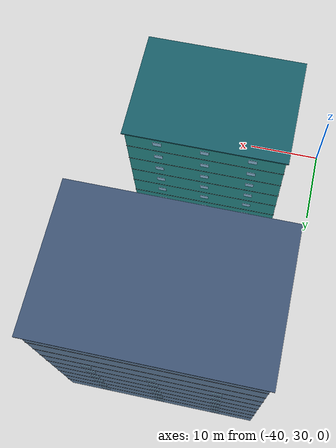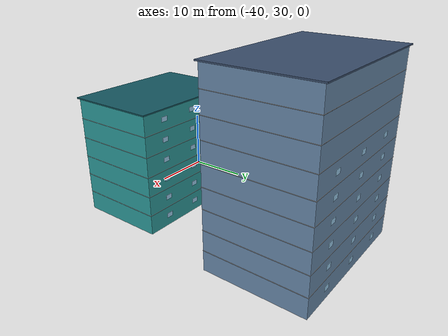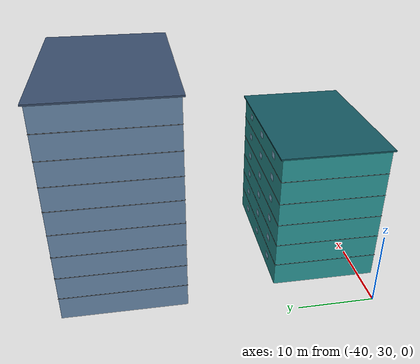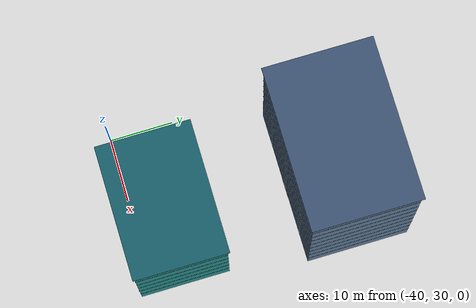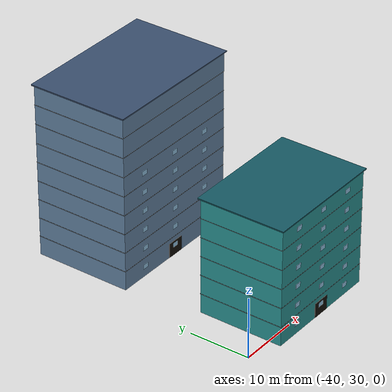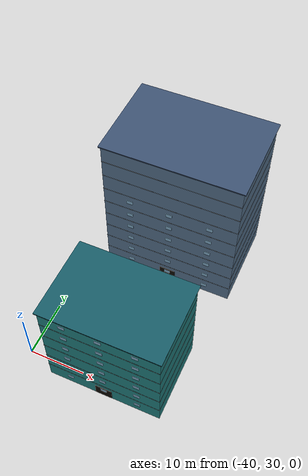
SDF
<sdf version="1.7">
 <world name="campus_regional">
  <model name="laboratory_building">
   <static>true</static>
   <pose>-25.0 62.0 0 0 0 0</pose>
   <link name="body">
    <visual name="body">
     <pose>0 0 14.400 0 0 0</pose>
     <geometry><box><size>24.000 16.000 28.800</size></box></geometry>
     <material><ambient>0.420 0.550 0.680 1.000</ambient><diffuse>0.420 0.550 0.680 1.000</diffuse></material>
    </visual>
    <collision name="body_collision">
     <pose>0 0 14.400 0 0 0</pose>
     <geometry><box><size>24.000 16.000 28.800</size></box></geometry>
    </collision>
    <visual name="roof">
     <pose>0 0 28.900 0 0 0</pose>
     <geometry><box><size>24.600 16.600 0.200</size></box></geometry>
     <material><ambient>0.220 0.300 0.420 1.000</ambient><diffuse>0.220 0.300 0.420 1.000</diffuse></material>
    </visual>
    <visual name="floor_sep_n_1">
     <pose>0 8.018 3.200 0 0 0</pose>
     <geometry><box><size>24.100 0.035 0.060</size></box></geometry>
     <material><ambient>0.080 0.080 0.080 1.000</ambient><diffuse>0.080 0.080 0.080 1.000</diffuse></material>
    </visual>
    <visual name="floor_sep_s_1">
     <pose>0 -8.018 3.200 0 0 0</pose>
     <geometry><box><size>24.100 0.035 0.060</size></box></geometry>
     <material><ambient>0.080 0.080 0.080 1.000</ambient><diffuse>0.080 0.080 0.080 1.000</diffuse></material>
    </visual>
    <visual name="floor_sep_e_1">
     <pose>12.018 0 3.200 0 0 0</pose>
     <geometry><box><size>0.035 16.100 0.060</size></box></geometry>
     <material><ambient>0.080 0.080 0.080 1.000</ambient><diffuse>0.080 0.080 0.080 1.000</diffuse></material>
    </visual>
    <visual name="floor_sep_w_1">
     <pose>-12.018 0 3.200 0 0 0</pose>
     <geometry><box><size>0.035 16.100 0.060</size></box></geometry>
     <material><ambient>0.080 0.080 0.080 1.000</ambient><diffuse>0.080 0.080 0.080 1.000</diffuse></material>
    </visual>
    <visual name="floor_sep_n_2">
     <pose>0 8.018 6.400 0 0 0</pose>
     <geometry><box><size>24.100 0.035 0.060</size></box></geometry>
     <material><ambient>0.080 0.080 0.080 1.000</ambient><diffuse>0.080 0.080 0.080 1.000</diffuse></material>
    </visual>
    <visual name="floor_sep_s_2">
     <pose>0 -8.018 6.400 0 0 0</pose>
     <geometry><box><size>24.100 0.035 0.060</size></box></geometry>
     <material><ambient>0.080 0.080 0.080 1.000</ambient><diffuse>0.080 0.080 0.080 1.000</diffuse></material>
    </visual>
    <visual name="floor_sep_e_2">
     <pose>12.018 0 6.400 0 0 0</pose>
     <geometry><box><size>0.035 16.100 0.060</size></box></geometry>
     <material><ambient>0.080 0.080 0.080 1.000</ambient><diffuse>0.080 0.080 0.080 1.000</diffuse></material>
    </visual>
    <visual name="floor_sep_w_2">
     <pose>-12.018 0 6.400 0 0 0</pose>
     <geometry><box><size>0.035 16.100 0.060</size></box></geometry>
     <material><ambient>0.080 0.080 0.080 1.000</ambient><diffuse>0.080 0.080 0.080 1.000</diffuse></material>
    </visual>
    <visual name="floor_sep_n_3">
     <pose>0 8.018 9.600 0 0 0</pose>
     <geometry><box><size>24.100 0.035 0.060</size></box></geometry>
     <material><ambient>0.080 0.080 0.080 1.000</ambient><diffuse>0.080 0.080 0.080 1.000</diffuse></material>
    </visual>
    <visual name="floor_sep_s_3">
     <pose>0 -8.018 9.600 0 0 0</pose>
     <geometry><box><size>24.100 0.035 0.060</size></box></geometry>
     <material><ambient>0.080 0.080 0.080 1.000</ambient><diffuse>0.080 0.080 0.080 1.000</diffuse></material>
    </visual>
    <visual name="floor_sep_e_3">
     <pose>12.018 0 9.600 0 0 0</pose>
     <geometry><box><size>0.035 16.100 0.060</size></box></geometry>
     <material><ambient>0.080 0.080 0.080 1.000</ambient><diffuse>0.080 0.080 0.080 1.000</diffuse></material>
    </visual>
    <visual name="floor_sep_w_3">
     <pose>-12.018 0 9.600 0 0 0</pose>
     <geometry><box><size>0.035 16.100 0.060</size></box></geometry>
     <material><ambient>0.080 0.080 0.080 1.000</ambient><diffuse>0.080 0.080 0.080 1.000</diffuse></material>
    </visual>
    <visual name="floor_sep_n_4">
     <pose>0 8.018 12.800 0 0 0</pose>
     <geometry><box><size>24.100 0.035 0.060</size></box></geometry>
     <material><ambient>0.080 0.080 0.080 1.000</ambient><diffuse>0.080 0.080 0.080 1.000</diffuse></material>
    </visual>
    <visual name="floor_sep_s_4">
     <pose>0 -8.018 12.800 0 0 0</pose>
     <geometry><box><size>24.100 0.035 0.060</size></box></geometry>
     <material><ambient>0.080 0.080 0.080 1.000</ambient><diffuse>0.080 0.080 0.080 1.000</diffuse></material>
    </visual>
    <visual name="floor_sep_e_4">
     <pose>12.018 0 12.800 0 0 0</pose>
     <geometry><box><size>0.035 16.100 0.060</size></box></geometry>
     <material><ambient>0.080 0.080 0.080 1.000</ambient><diffuse>0.080 0.080 0.080 1.000</diffuse></material>
    </visual>
    <visual name="floor_sep_w_4">
     <pose>-12.018 0 12.800 0 0 0</pose>
     <geometry><box><size>0.035 16.100 0.060</size></box></geometry>
     <material><ambient>0.080 0.080 0.080 1.000</ambient><diffuse>0.080 0.080 0.080 1.000</diffuse></material>
    </visual>
    <visual name="floor_sep_n_5">
     <pose>0 8.018 16.000 0 0 0</pose>
     <geometry><box><size>24.100 0.035 0.060</size></box></geometry>
     <material><ambient>0.080 0.080 0.080 1.000</ambient><diffuse>0.080 0.080 0.080 1.000</diffuse></material>
    </visual>
    <visual name="floor_sep_s_5">
     <pose>0 -8.018 16.000 0 0 0</pose>
     <geometry><box><size>24.100 0.035 0.060</size></box></geometry>
     <material><ambient>0.080 0.080 0.080 1.000</ambient><diffuse>0.080 0.080 0.080 1.000</diffuse></material>
    </visual>
    <visual name="floor_sep_e_5">
     <pose>12.018 0 16.000 0 0 0</pose>
     <geometry><box><size>0.035 16.100 0.060</size></box></geometry>
     <material><ambient>0.080 0.080 0.080 1.000</ambient><diffuse>0.080 0.080 0.080 1.000</diffuse></material>
    </visual>
    <visual name="floor_sep_w_5">
     <pose>-12.018 0 16.000 0 0 0</pose>
     <geometry><box><size>0.035 16.100 0.060</size></box></geometry>
     <material><ambient>0.080 0.080 0.080 1.000</ambient><diffuse>0.080 0.080 0.080 1.000</diffuse></material>
    </visual>
    <visual name="floor_sep_n_6">
     <pose>0 8.018 19.200 0 0 0</pose>
     <geometry><box><size>24.100 0.035 0.060</size></box></geometry>
     <material><ambient>0.080 0.080 0.080 1.000</ambient><diffuse>0.080 0.080 0.080 1.000</diffuse></material>
    </visual>
    <visual name="floor_sep_s_6">
     <pose>0 -8.018 19.200 0 0 0</pose>
     <geometry><box><size>24.100 0.035 0.060</size></box></geometry>
     <material><ambient>0.080 0.080 0.080 1.000</ambient><diffuse>0.080 0.080 0.080 1.000</diffuse></material>
    </visual>
    <visual name="floor_sep_e_6">
     <pose>12.018 0 19.200 0 0 0</pose>
     <geometry><box><size>0.035 16.100 0.060</size></box></geometry>
     <material><ambient>0.080 0.080 0.080 1.000</ambient><diffuse>0.080 0.080 0.080 1.000</diffuse></material>
    </visual>
    <visual name="floor_sep_w_6">
     <pose>-12.018 0 19.200 0 0 0</pose>
     <geometry><box><size>0.035 16.100 0.060</size></box></geometry>
     <material><ambient>0.080 0.080 0.080 1.000</ambient><diffuse>0.080 0.080 0.080 1.000</diffuse></material>
    </visual>
    <visual name="floor_sep_n_7">
     <pose>0 8.018 22.400 0 0 0</pose>
     <geometry><box><size>24.100 0.035 0.060</size></box></geometry>
     <material><ambient>0.080 0.080 0.080 1.000</ambient><diffuse>0.080 0.080 0.080 1.000</diffuse></material>
    </visual>
    <visual name="floor_sep_s_7">
     <pose>0 -8.018 22.400 0 0 0</pose>
     <geometry><box><size>24.100 0.035 0.060</size></box></geometry>
     <material><ambient>0.080 0.080 0.080 1.000</ambient><diffuse>0.080 0.080 0.080 1.000</diffuse></material>
    </visual>
    <visual name="floor_sep_e_7">
     <pose>12.018 0 22.400 0 0 0</pose>
     <geometry><box><size>0.035 16.100 0.060</size></box></geometry>
     <material><ambient>0.080 0.080 0.080 1.000</ambient><diffuse>0.080 0.080 0.080 1.000</diffuse></material>
    </visual>
    <visual name="floor_sep_w_7">
     <pose>-12.018 0 22.400 0 0 0</pose>
     <geometry><box><size>0.035 16.100 0.060</size></box></geometry>
     <material><ambient>0.080 0.080 0.080 1.000</ambient><diffuse>0.080 0.080 0.080 1.000</diffuse></material>
    </visual>
    <visual name="floor_sep_n_8">
     <pose>0 8.018 25.600 0 0 0</pose>
     <geometry><box><size>24.100 0.035 0.060</size></box></geometry>
     <material><ambient>0.080 0.080 0.080 1.000</ambient><diffuse>0.080 0.080 0.080 1.000</diffuse></material>
    </visual>
    <visual name="floor_sep_s_8">
     <pose>0 -8.018 25.600 0 0 0</pose>
     <geometry><box><size>24.100 0.035 0.060</size></box></geometry>
     <material><ambient>0.080 0.080 0.080 1.000</ambient><diffuse>0.080 0.080 0.080 1.000</diffuse></material>
    </visual>
    <visual name="floor_sep_e_8">
     <pose>12.018 0 25.600 0 0 0</pose>
     <geometry><box><size>0.035 16.100 0.060</size></box></geometry>
     <material><ambient>0.080 0.080 0.080 1.000</ambient><diffuse>0.080 0.080 0.080 1.000</diffuse></material>
    </visual>
    <visual name="floor_sep_w_8">
     <pose>-12.018 0 25.600 0 0 0</pose>
     <geometry><box><size>0.035 16.100 0.060</size></box></geometry>
     <material><ambient>0.080 0.080 0.080 1.000</ambient><diffuse>0.080 0.080 0.080 1.000</diffuse></material>
    </visual>
    <visual name="front_door">
     <pose>0 -8.012 1.2 0 0 0</pose>
     <geometry><box><size>3.000 0.050 2.400</size></box></geometry>
     <material><ambient>0.080 0.060 0.040 1.000</ambient><diffuse>0.080 0.060 0.040 1.000</diffuse></material>
    </visual>
    <visual name="win_n_1_-7.2">
     <pose>-7.200 8.020 1.700 0 0 0</pose>
     <geometry><box><size>1.100 0.035 0.750</size></box></geometry>
     <material><ambient>0.620 0.820 0.950 1.000</ambient><diffuse>0.620 0.820 0.950 1.000</diffuse></material>
    </visual>
    <visual name="win_s_1_-7.2">
     <pose>-7.200 -8.020 1.700 0 0 0</pose>
     <geometry><box><size>1.100 0.035 0.750</size></box></geometry>
     <material><ambient>0.620 0.820 0.950 1.000</ambient><diffuse>0.620 0.820 0.950 1.000</diffuse></material>
    </visual>
    <visual name="win_n_1_0.0">
     <pose>0.000 8.020 1.700 0 0 0</pose>
     <geometry><box><size>1.100 0.035 0.750</size></box></geometry>
     <material><ambient>0.620 0.820 0.950 1.000</ambient><diffuse>0.620 0.820 0.950 1.000</diffuse></material>
    </visual>
    <visual name="win_s_1_0.0">
     <pose>0.000 -8.020 1.700 0 0 0</pose>
     <geometry><box><size>1.100 0.035 0.750</size></box></geometry>
     <material><ambient>0.620 0.820 0.950 1.000</ambient><diffuse>0.620 0.820 0.950 1.000</diffuse></material>
    </visual>
    <visual name="win_n_1_7.2">
     <pose>7.200 8.020 1.700 0 0 0</pose>
     <geometry><box><size>1.100 0.035 0.750</size></box></geometry>
     <material><ambient>0.620 0.820 0.950 1.000</ambient><diffuse>0.620 0.820 0.950 1.000</diffuse></material>
    </visual>
    <visual name="win_s_1_7.2">
     <pose>7.200 -8.020 1.700 0 0 0</pose>
     <geometry><box><size>1.100 0.035 0.750</size></box></geometry>
     <material><ambient>0.620 0.820 0.950 1.000</ambient><diffuse>0.620 0.820 0.950 1.000</diffuse></material>
    </visual>
    <visual name="win_n_2_-7.2">
     <pose>-7.200 8.020 4.900 0 0 0</pose>
     <geometry><box><size>1.100 0.035 0.750</size></box></geometry>
     <material><ambient>0.620 0.820 0.950 1.000</ambient><diffuse>0.620 0.820 0.950 1.000</diffuse></material>
    </visual>
    <visual name="win_s_2_-7.2">
     <pose>-7.200 -8.020 4.900 0 0 0</pose>
     <geometry><box><size>1.100 0.035 0.750</size></box></geometry>
     <material><ambient>0.620 0.820 0.950 1.000</ambient><diffuse>0.620 0.820 0.950 1.000</diffuse></material>
    </visual>
    <visual name="win_n_2_0.0">
     <pose>0.000 8.020 4.900 0 0 0</pose>
     <geometry><box><size>1.100 0.035 0.750</size></box></geometry>
     <material><ambient>0.620 0.820 0.950 1.000</ambient><diffuse>0.620 0.820 0.950 1.000</diffuse></material>
    </visual>
    <visual name="win_s_2_0.0">
     <pose>0.000 -8.020 4.900 0 0 0</pose>
     <geometry><box><size>1.100 0.035 0.750</size></box></geometry>
     <material><ambient>0.620 0.820 0.950 1.000</ambient><diffuse>0.620 0.820 0.950 1.000</diffuse></material>
    </visual>
    <visual name="win_n_2_7.2">
     <pose>7.200 8.020 4.900 0 0 0</pose>
     <geometry><box><size>1.100 0.035 0.750</size></box></geometry>
     <material><ambient>0.620 0.820 0.950 1.000</ambient><diffuse>0.620 0.820 0.950 1.000</diffuse></material>
    </visual>
    <visual name="win_s_2_7.2">
     <pose>7.200 -8.020 4.900 0 0 0</pose>
     <geometry><box><size>1.100 0.035 0.750</size></box></geometry>
     <material><ambient>0.620 0.820 0.950 1.000</ambient><diffuse>0.620 0.820 0.950 1.000</diffuse></material>
    </visual>
    <visual name="win_n_3_-7.2">
     <pose>-7.200 8.020 8.100 0 0 0</pose>
     <geometry><box><size>1.100 0.035 0.750</size></box></geometry>
     <material><ambient>0.620 0.820 0.950 1.000</ambient><diffuse>0.620 0.820 0.950 1.000</diffuse></material>
    </visual>
    <visual name="win_s_3_-7.2">
     <pose>-7.200 -8.020 8.100 0 0 0</pose>
     <geometry><box><size>1.100 0.035 0.750</size></box></geometry>
     <material><ambient>0.620 0.820 0.950 1.000</ambient><diffuse>0.620 0.820 0.950 1.000</diffuse></material>
    </visual>
    <visual name="win_n_3_0.0">
     <pose>0.000 8.020 8.100 0 0 0</pose>
     <geometry><box><size>1.100 0.035 0.750</size></box></geometry>
     <material><ambient>0.620 0.820 0.950 1.000</ambient><diffuse>0.620 0.820 0.950 1.000</diffuse></material>
    </visual>
    <visual name="win_s_3_0.0">
     <pose>0.000 -8.020 8.100 0 0 0</pose>
     <geometry><box><size>1.100 0.035 0.750</size></box></geometry>
     <material><ambient>0.620 0.820 0.950 1.000</ambient><diffuse>0.620 0.820 0.950 1.000</diffuse></material>
    </visual>
    <visual name="win_n_3_7.2">
     <pose>7.200 8.020 8.100 0 0 0</pose>
     <geometry><box><size>1.100 0.035 0.750</size></box></geometry>
     <material><ambient>0.620 0.820 0.950 1.000</ambient><diffuse>0.620 0.820 0.950 1.000</diffuse></material>
    </visual>
    <visual name="win_s_3_7.2">
     <pose>7.200 -8.020 8.100 0 0 0</pose>
     <geometry><box><size>1.100 0.035 0.750</size></box></geometry>
     <material><ambient>0.620 0.820 0.950 1.000</ambient><diffuse>0.620 0.820 0.950 1.000</diffuse></material>
    </visual>
    <visual name="win_n_4_-7.2">
     <pose>-7.200 8.020 11.300 0 0 0</pose>
     <geometry><box><size>1.100 0.035 0.750</size></box></geometry>
     <material><ambient>0.620 0.820 0.950 1.000</ambient><diffuse>0.620 0.820 0.950 1.000</diffuse></material>
    </visual>
    <visual name="win_s_4_-7.2">
     <pose>-7.200 -8.020 11.300 0 0 0</pose>
     <geometry><box><size>1.100 0.035 0.750</size></box></geometry>
     <material><ambient>0.620 0.820 0.950 1.000</ambient><diffuse>0.620 0.820 0.950 1.000</diffuse></material>
    </visual>
    <visual name="win_n_4_0.0">
     <pose>0.000 8.020 11.300 0 0 0</pose>
     <geometry><box><size>1.100 0.035 0.750</size></box></geometry>
     <material><ambient>0.620 0.820 0.950 1.000</ambient><diffuse>0.620 0.820 0.950 1.000</diffuse></material>
    </visual>
    <visual name="win_s_4_0.0">
     <pose>0.000 -8.020 11.300 0 0 0</pose>
     <geometry><box><size>1.100 0.035 0.750</size></box></geometry>
     <material><ambient>0.620 0.820 0.950 1.000</ambient><diffuse>0.620 0.820 0.950 1.000</diffuse></material>
    </visual>
    <visual name="win_n_4_7.2">
     <pose>7.200 8.020 11.300 0 0 0</pose>
     <geometry><box><size>1.100 0.035 0.750</size></box></geometry>
     <material><ambient>0.620 0.820 0.950 1.000</ambient><diffuse>0.620 0.820 0.950 1.000</diffuse></material>
    </visual>
    <visual name="win_s_4_7.2">
     <pose>7.200 -8.020 11.300 0 0 0</pose>
     <geometry><box><size>1.100 0.035 0.750</size></box></geometry>
     <material><ambient>0.620 0.820 0.950 1.000</ambient><diffuse>0.620 0.820 0.950 1.000</diffuse></material>
    </visual>
    <visual name="win_n_5_-7.2">
     <pose>-7.200 8.020 14.500 0 0 0</pose>
     <geometry><box><size>1.100 0.035 0.750</size></box></geometry>
     <material><ambient>0.620 0.820 0.950 1.000</ambient><diffuse>0.620 0.820 0.950 1.000</diffuse></material>
    </visual>
    <visual name="win_s_5_-7.2">
     <pose>-7.200 -8.020 14.500 0 0 0</pose>
     <geometry><box><size>1.100 0.035 0.750</size></box></geometry>
     <material><ambient>0.620 0.820 0.950 1.000</ambient><diffuse>0.620 0.820 0.950 1.000</diffuse></material>
    </visual>
    <visual name="win_n_5_0.0">
     <pose>0.000 8.020 14.500 0 0 0</pose>
     <geometry><box><size>1.100 0.035 0.750</size></box></geometry>
     <material><ambient>0.620 0.820 0.950 1.000</ambient><diffuse>0.620 0.820 0.950 1.000</diffuse></material>
    </visual>
    <visual name="win_s_5_0.0">
     <pose>0.000 -8.020 14.500 0 0 0</pose>
     <geometry><box><size>1.100 0.035 0.750</size></box></geometry>
     <material><ambient>0.620 0.820 0.950 1.000</ambient><diffuse>0.620 0.820 0.950 1.000</diffuse></material>
    </visual>
    <visual name="win_n_5_7.2">
     <pose>7.200 8.020 14.500 0 0 0</pose>
     <geometry><box><size>1.100 0.035 0.750</size></box></geometry>
     <material><ambient>0.620 0.820 0.950 1.000</ambient><diffuse>0.620 0.820 0.950 1.000</diffuse></material>
    </visual>
    <visual name="win_s_5_7.2">
     <pose>7.200 -8.020 14.500 0 0 0</pose>
     <geometry><box><size>1.100 0.035 0.750</size></box></geometry>
     <material><ambient>0.620 0.820 0.950 1.000</ambient><diffuse>0.620 0.820 0.950 1.000</diffuse></material>
    </visual>
    <visual name="win_n_6_-7.2">
     <pose>-7.200 8.020 17.700 0 0 0</pose>
     <geometry><box><size>1.100 0.035 0.750</size></box></geometry>
     <material><ambient>0.620 0.820 0.950 1.000</ambient><diffuse>0.620 0.820 0.950 1.000</diffuse></material>
    </visual>
    <visual name="win_s_6_-7.2">
     <pose>-7.200 -8.020 17.700 0 0 0</pose>
     <geometry><box><size>1.100 0.035 0.750</size></box></geometry>
     <material><ambient>0.620 0.820 0.950 1.000</ambient><diffuse>0.620 0.820 0.950 1.000</diffuse></material>
    </visual>
    <visual name="win_n_6_0.0">
     <pose>0.000 8.020 17.700 0 0 0</pose>
     <geometry><box><size>1.100 0.035 0.750</size></box></geometry>
     <material><ambient>0.620 0.820 0.950 1.000</ambient><diffuse>0.620 0.820 0.950 1.000</diffuse></material>
    </visual>
    <visual name="win_s_6_0.0">
     <pose>0.000 -8.020 17.700 0 0 0</pose>
     <geometry><box><size>1.100 0.035 0.750</size></box></geometry>
     <material><ambient>0.620 0.820 0.950 1.000</ambient><diffuse>0.620 0.820 0.950 1.000</diffuse></material>
    </visual>
    <visual name="win_n_6_7.2">
     <pose>7.200 8.020 17.700 0 0 0</pose>
     <geometry><box><size>1.100 0.035 0.750</size></box></geometry>
     <material><ambient>0.620 0.820 0.950 1.000</ambient><diffuse>0.620 0.820 0.950 1.000</diffuse></material>
    </visual>
    <visual name="win_s_6_7.2">
     <pose>7.200 -8.020 17.700 0 0 0</pose>
     <geometry><box><size>1.100 0.035 0.750</size></box></geometry>
     <material><ambient>0.620 0.820 0.950 1.000</ambient><diffuse>0.620 0.820 0.950 1.000</diffuse></material>
    </visual>
   </link>
  </model>
  <model name="innovation_center">
   <static>true</static>
   <pose>-25.0 35.0 0 0 0 0</pose>
   <link name="body">
    <visual name="body">
     <pose>0 0 9.600 0 0 0</pose>
     <geometry><box><size>20.000 14.000 19.200</size></box></geometry>
     <material><ambient>0.180 0.620 0.620 1.000</ambient><diffuse>0.180 0.620 0.620 1.000</diffuse></material>
    </visual>
    <collision name="body_collision">
     <pose>0 0 9.600 0 0 0</pose>
     <geometry><box><size>20.000 14.000 19.200</size></box></geometry>
    </collision>
    <visual name="roof">
     <pose>0 0 19.300 0 0 0</pose>
     <geometry><box><size>20.600 14.600 0.200</size></box></geometry>
     <material><ambient>0.080 0.340 0.380 1.000</ambient><diffuse>0.080 0.340 0.380 1.000</diffuse></material>
    </visual>
    <visual name="floor_sep_n_1">
     <pose>0 7.018 3.200 0 0 0</pose>
     <geometry><box><size>20.100 0.035 0.060</size></box></geometry>
     <material><ambient>0.080 0.080 0.080 1.000</ambient><diffuse>0.080 0.080 0.080 1.000</diffuse></material>
    </visual>
    <visual name="floor_sep_s_1">
     <pose>0 -7.018 3.200 0 0 0</pose>
     <geometry><box><size>20.100 0.035 0.060</size></box></geometry>
     <material><ambient>0.080 0.080 0.080 1.000</ambient><diffuse>0.080 0.080 0.080 1.000</diffuse></material>
    </visual>
    <visual name="floor_sep_e_1">
     <pose>10.018 0 3.200 0 0 0</pose>
     <geometry><box><size>0.035 14.100 0.060</size></box></geometry>
     <material><ambient>0.080 0.080 0.080 1.000</ambient><diffuse>0.080 0.080 0.080 1.000</diffuse></material>
    </visual>
    <visual name="floor_sep_w_1">
     <pose>-10.018 0 3.200 0 0 0</pose>
     <geometry><box><size>0.035 14.100 0.060</size></box></geometry>
     <material><ambient>0.080 0.080 0.080 1.000</ambient><diffuse>0.080 0.080 0.080 1.000</diffuse></material>
    </visual>
    <visual name="floor_sep_n_2">
     <pose>0 7.018 6.400 0 0 0</pose>
     <geometry><box><size>20.100 0.035 0.060</size></box></geometry>
     <material><ambient>0.080 0.080 0.080 1.000</ambient><diffuse>0.080 0.080 0.080 1.000</diffuse></material>
    </visual>
    <visual name="floor_sep_s_2">
     <pose>0 -7.018 6.400 0 0 0</pose>
     <geometry><box><size>20.100 0.035 0.060</size></box></geometry>
     <material><ambient>0.080 0.080 0.080 1.000</ambient><diffuse>0.080 0.080 0.080 1.000</diffuse></material>
    </visual>
    <visual name="floor_sep_e_2">
     <pose>10.018 0 6.400 0 0 0</pose>
     <geometry><box><size>0.035 14.100 0.060</size></box></geometry>
     <material><ambient>0.080 0.080 0.080 1.000</ambient><diffuse>0.080 0.080 0.080 1.000</diffuse></material>
    </visual>
    <visual name="floor_sep_w_2">
     <pose>-10.018 0 6.400 0 0 0</pose>
     <geometry><box><size>0.035 14.100 0.060</size></box></geometry>
     <material><ambient>0.080 0.080 0.080 1.000</ambient><diffuse>0.080 0.080 0.080 1.000</diffuse></material>
    </visual>
    <visual name="floor_sep_n_3">
     <pose>0 7.018 9.600 0 0 0</pose>
     <geometry><box><size>20.100 0.035 0.060</size></box></geometry>
     <material><ambient>0.080 0.080 0.080 1.000</ambient><diffuse>0.080 0.080 0.080 1.000</diffuse></material>
    </visual>
    <visual name="floor_sep_s_3">
     <pose>0 -7.018 9.600 0 0 0</pose>
     <geometry><box><size>20.100 0.035 0.060</size></box></geometry>
     <material><ambient>0.080 0.080 0.080 1.000</ambient><diffuse>0.080 0.080 0.080 1.000</diffuse></material>
    </visual>
    <visual name="floor_sep_e_3">
     <pose>10.018 0 9.600 0 0 0</pose>
     <geometry><box><size>0.035 14.100 0.060</size></box></geometry>
     <material><ambient>0.080 0.080 0.080 1.000</ambient><diffuse>0.080 0.080 0.080 1.000</diffuse></material>
    </visual>
    <visual name="floor_sep_w_3">
     <pose>-10.018 0 9.600 0 0 0</pose>
     <geometry><box><size>0.035 14.100 0.060</size></box></geometry>
     <material><ambient>0.080 0.080 0.080 1.000</ambient><diffuse>0.080 0.080 0.080 1.000</diffuse></material>
    </visual>
    <visual name="floor_sep_n_4">
     <pose>0 7.018 12.800 0 0 0</pose>
     <geometry><box><size>20.100 0.035 0.060</size></box></geometry>
     <material><ambient>0.080 0.080 0.080 1.000</ambient><diffuse>0.080 0.080 0.080 1.000</diffuse></material>
    </visual>
    <visual name="floor_sep_s_4">
     <pose>0 -7.018 12.800 0 0 0</pose>
     <geometry><box><size>20.100 0.035 0.060</size></box></geometry>
     <material><ambient>0.080 0.080 0.080 1.000</ambient><diffuse>0.080 0.080 0.080 1.000</diffuse></material>
    </visual>
    <visual name="floor_sep_e_4">
     <pose>10.018 0 12.800 0 0 0</pose>
     <geometry><box><size>0.035 14.100 0.060</size></box></geometry>
     <material><ambient>0.080 0.080 0.080 1.000</ambient><diffuse>0.080 0.080 0.080 1.000</diffuse></material>
    </visual>
    <visual name="floor_sep_w_4">
     <pose>-10.018 0 12.800 0 0 0</pose>
     <geometry><box><size>0.035 14.100 0.060</size></box></geometry>
     <material><ambient>0.080 0.080 0.080 1.000</ambient><diffuse>0.080 0.080 0.080 1.000</diffuse></material>
    </visual>
    <visual name="floor_sep_n_5">
     <pose>0 7.018 16.000 0 0 0</pose>
     <geometry><box><size>20.100 0.035 0.060</size></box></geometry>
     <material><ambient>0.080 0.080 0.080 1.000</ambient><diffuse>0.080 0.080 0.080 1.000</diffuse></material>
    </visual>
    <visual name="floor_sep_s_5">
     <pose>0 -7.018 16.000 0 0 0</pose>
     <geometry><box><size>20.100 0.035 0.060</size></box></geometry>
     <material><ambient>0.080 0.080 0.080 1.000</ambient><diffuse>0.080 0.080 0.080 1.000</diffuse></material>
    </visual>
    <visual name="floor_sep_e_5">
     <pose>10.018 0 16.000 0 0 0</pose>
     <geometry><box><size>0.035 14.100 0.060</size></box></geometry>
     <material><ambient>0.080 0.080 0.080 1.000</ambient><diffuse>0.080 0.080 0.080 1.000</diffuse></material>
    </visual>
    <visual name="floor_sep_w_5">
     <pose>-10.018 0 16.000 0 0 0</pose>
     <geometry><box><size>0.035 14.100 0.060</size></box></geometry>
     <material><ambient>0.080 0.080 0.080 1.000</ambient><diffuse>0.080 0.080 0.080 1.000</diffuse></material>
    </visual>
    <visual name="front_door">
     <pose>0 -7.012 1.2 0 0 0</pose>
     <geometry><box><size>3.000 0.050 2.400</size></box></geometry>
     <material><ambient>0.080 0.060 0.040 1.000</ambient><diffuse>0.080 0.060 0.040 1.000</diffuse></material>
    </visual>
    <visual name="win_n_1_-6.0">
     <pose>-6.000 7.020 1.700 0 0 0</pose>
     <geometry><box><size>1.100 0.035 0.750</size></box></geometry>
     <material><ambient>0.620 0.820 0.950 1.000</ambient><diffuse>0.620 0.820 0.950 1.000</diffuse></material>
    </visual>
    <visual name="win_s_1_-6.0">
     <pose>-6.000 -7.020 1.700 0 0 0</pose>
     <geometry><box><size>1.100 0.035 0.750</size></box></geometry>
     <material><ambient>0.620 0.820 0.950 1.000</ambient><diffuse>0.620 0.820 0.950 1.000</diffuse></material>
    </visual>
    <visual name="win_n_1_0.0">
     <pose>0.000 7.020 1.700 0 0 0</pose>
     <geometry><box><size>1.100 0.035 0.750</size></box></geometry>
     <material><ambient>0.620 0.820 0.950 1.000</ambient><diffuse>0.620 0.820 0.950 1.000</diffuse></material>
    </visual>
    <visual name="win_s_1_0.0">
     <pose>0.000 -7.020 1.700 0 0 0</pose>
     <geometry><box><size>1.100 0.035 0.750</size></box></geometry>
     <material><ambient>0.620 0.820 0.950 1.000</ambient><diffuse>0.620 0.820 0.950 1.000</diffuse></material>
    </visual>
    <visual name="win_n_1_6.0">
     <pose>6.000 7.020 1.700 0 0 0</pose>
     <geometry><box><size>1.100 0.035 0.750</size></box></geometry>
     <material><ambient>0.620 0.820 0.950 1.000</ambient><diffuse>0.620 0.820 0.950 1.000</diffuse></material>
    </visual>
    <visual name="win_s_1_6.0">
     <pose>6.000 -7.020 1.700 0 0 0</pose>
     <geometry><box><size>1.100 0.035 0.750</size></box></geometry>
     <material><ambient>0.620 0.820 0.950 1.000</ambient><diffuse>0.620 0.820 0.950 1.000</diffuse></material>
    </visual>
    <visual name="win_n_2_-6.0">
     <pose>-6.000 7.020 4.900 0 0 0</pose>
     <geometry><box><size>1.100 0.035 0.750</size></box></geometry>
     <material><ambient>0.620 0.820 0.950 1.000</ambient><diffuse>0.620 0.820 0.950 1.000</diffuse></material>
    </visual>
    <visual name="win_s_2_-6.0">
     <pose>-6.000 -7.020 4.900 0 0 0</pose>
     <geometry><box><size>1.100 0.035 0.750</size></box></geometry>
     <material><ambient>0.620 0.820 0.950 1.000</ambient><diffuse>0.620 0.820 0.950 1.000</diffuse></material>
    </visual>
    <visual name="win_n_2_0.0">
     <pose>0.000 7.020 4.900 0 0 0</pose>
     <geometry><box><size>1.100 0.035 0.750</size></box></geometry>
     <material><ambient>0.620 0.820 0.950 1.000</ambient><diffuse>0.620 0.820 0.950 1.000</diffuse></material>
    </visual>
    <visual name="win_s_2_0.0">
     <pose>0.000 -7.020 4.900 0 0 0</pose>
     <geometry><box><size>1.100 0.035 0.750</size></box></geometry>
     <material><ambient>0.620 0.820 0.950 1.000</ambient><diffuse>0.620 0.820 0.950 1.000</diffuse></material>
    </visual>
    <visual name="win_n_2_6.0">
     <pose>6.000 7.020 4.900 0 0 0</pose>
     <geometry><box><size>1.100 0.035 0.750</size></box></geometry>
     <material><ambient>0.620 0.820 0.950 1.000</ambient><diffuse>0.620 0.820 0.950 1.000</diffuse></material>
    </visual>
    <visual name="win_s_2_6.0">
     <pose>6.000 -7.020 4.900 0 0 0</pose>
     <geometry><box><size>1.100 0.035 0.750</size></box></geometry>
     <material><ambient>0.620 0.820 0.950 1.000</ambient><diffuse>0.620 0.820 0.950 1.000</diffuse></material>
    </visual>
    <visual name="win_n_3_-6.0">
     <pose>-6.000 7.020 8.100 0 0 0</pose>
     <geometry><box><size>1.100 0.035 0.750</size></box></geometry>
     <material><ambient>0.620 0.820 0.950 1.000</ambient><diffuse>0.620 0.820 0.950 1.000</diffuse></material>
    </visual>
    <visual name="win_s_3_-6.0">
     <pose>-6.000 -7.020 8.100 0 0 0</pose>
     <geometry><box><size>1.100 0.035 0.750</size></box></geometry>
     <material><ambient>0.620 0.820 0.950 1.000</ambient><diffuse>0.620 0.820 0.950 1.000</diffuse></material>
    </visual>
    <visual name="win_n_3_0.0">
     <pose>0.000 7.020 8.100 0 0 0</pose>
     <geometry><box><size>1.100 0.035 0.750</size></box></geometry>
     <material><ambient>0.620 0.820 0.950 1.000</ambient><diffuse>0.620 0.820 0.950 1.000</diffuse></material>
    </visual>
    <visual name="win_s_3_0.0">
     <pose>0.000 -7.020 8.100 0 0 0</pose>
     <geometry><box><size>1.100 0.035 0.750</size></box></geometry>
     <material><ambient>0.620 0.820 0.950 1.000</ambient><diffuse>0.620 0.820 0.950 1.000</diffuse></material>
    </visual>
    <visual name="win_n_3_6.0">
     <pose>6.000 7.020 8.100 0 0 0</pose>
     <geometry><box><size>1.100 0.035 0.750</size></box></geometry>
     <material><ambient>0.620 0.820 0.950 1.000</ambient><diffuse>0.620 0.820 0.950 1.000</diffuse></material>
    </visual>
    <visual name="win_s_3_6.0">
     <pose>6.000 -7.020 8.100 0 0 0</pose>
     <geometry><box><size>1.100 0.035 0.750</size></box></geometry>
     <material><ambient>0.620 0.820 0.950 1.000</ambient><diffuse>0.620 0.820 0.950 1.000</diffuse></material>
    </visual>
    <visual name="win_n_4_-6.0">
     <pose>-6.000 7.020 11.300 0 0 0</pose>
     <geometry><box><size>1.100 0.035 0.750</size></box></geometry>
     <material><ambient>0.620 0.820 0.950 1.000</ambient><diffuse>0.620 0.820 0.950 1.000</diffuse></material>
    </visual>
    <visual name="win_s_4_-6.0">
     <pose>-6.000 -7.020 11.300 0 0 0</pose>
     <geometry><box><size>1.100 0.035 0.750</size></box></geometry>
     <material><ambient>0.620 0.820 0.950 1.000</ambient><diffuse>0.620 0.820 0.950 1.000</diffuse></material>
    </visual>
    <visual name="win_n_4_0.0">
     <pose>0.000 7.020 11.300 0 0 0</pose>
     <geometry><box><size>1.100 0.035 0.750</size></box></geometry>
     <material><ambient>0.620 0.820 0.950 1.000</ambient><diffuse>0.620 0.820 0.950 1.000</diffuse></material>
    </visual>
    <visual name="win_s_4_0.0">
     <pose>0.000 -7.020 11.300 0 0 0</pose>
     <geometry><box><size>1.100 0.035 0.750</size></box></geometry>
     <material><ambient>0.620 0.820 0.950 1.000</ambient><diffuse>0.620 0.820 0.950 1.000</diffuse></material>
    </visual>
    <visual name="win_n_4_6.0">
     <pose>6.000 7.020 11.300 0 0 0</pose>
     <geometry><box><size>1.100 0.035 0.750</size></box></geometry>
     <material><ambient>0.620 0.820 0.950 1.000</ambient><diffuse>0.620 0.820 0.950 1.000</diffuse></material>
    </visual>
    <visual name="win_s_4_6.0">
     <pose>6.000 -7.020 11.300 0 0 0</pose>
     <geometry><box><size>1.100 0.035 0.750</size></box></geometry>
     <material><ambient>0.620 0.820 0.950 1.000</ambient><diffuse>0.620 0.820 0.950 1.000</diffuse></material>
    </visual>
    <visual name="win_n_5_-6.0">
     <pose>-6.000 7.020 14.500 0 0 0</pose>
     <geometry><box><size>1.100 0.035 0.750</size></box></geometry>
     <material><ambient>0.620 0.820 0.950 1.000</ambient><diffuse>0.620 0.820 0.950 1.000</diffuse></material>
    </visual>
    <visual name="win_s_5_-6.0">
     <pose>-6.000 -7.020 14.500 0 0 0</pose>
     <geometry><box><size>1.100 0.035 0.750</size></box></geometry>
     <material><ambient>0.620 0.820 0.950 1.000</ambient><diffuse>0.620 0.820 0.950 1.000</diffuse></material>
    </visual>
    <visual name="win_n_5_0.0">
     <pose>0.000 7.020 14.500 0 0 0</pose>
     <geometry><box><size>1.100 0.035 0.750</size></box></geometry>
     <material><ambient>0.620 0.820 0.950 1.000</ambient><diffuse>0.620 0.820 0.950 1.000</diffuse></material>
    </visual>
    <visual name="win_s_5_0.0">
     <pose>0.000 -7.020 14.500 0 0 0</pose>
     <geometry><box><size>1.100 0.035 0.750</size></box></geometry>
     <material><ambient>0.620 0.820 0.950 1.000</ambient><diffuse>0.620 0.820 0.950 1.000</diffuse></material>
    </visual>
    <visual name="win_n_5_6.0">
     <pose>6.000 7.020 14.500 0 0 0</pose>
     <geometry><box><size>1.100 0.035 0.750</size></box></geometry>
     <material><ambient>0.620 0.820 0.950 1.000</ambient><diffuse>0.620 0.820 0.950 1.000</diffuse></material>
    </visual>
    <visual name="win_s_5_6.0">
     <pose>6.000 -7.020 14.500 0 0 0</pose>
     <geometry><box><size>1.100 0.035 0.750</size></box></geometry>
     <material><ambient>0.620 0.820 0.950 1.000</ambient><diffuse>0.620 0.820 0.950 1.000</diffuse></material>
    </visual>
    <visual name="win_n_6_-6.0">
     <pose>-6.000 7.020 17.700 0 0 0</pose>
     <geometry><box><size>1.100 0.035 0.750</size></box></geometry>
     <material><ambient>0.620 0.820 0.950 1.000</ambient><diffuse>0.620 0.820 0.950 1.000</diffuse></material>
    </visual>
    <visual name="win_s_6_-6.0">
     <pose>-6.000 -7.020 17.700 0 0 0</pose>
     <geometry><box><size>1.100 0.035 0.750</size></box></geometry>
     <material><ambient>0.620 0.820 0.950 1.000</ambient><diffuse>0.620 0.820 0.950 1.000</diffuse></material>
    </visual>
    <visual name="win_n_6_0.0">
     <pose>0.000 7.020 17.700 0 0 0</pose>
     <geometry><box><size>1.100 0.035 0.750</size></box></geometry>
     <material><ambient>0.620 0.820 0.950 1.000</ambient><diffuse>0.620 0.820 0.950 1.000</diffuse></material>
    </visual>
    <visual name="win_s_6_0.0">
     <pose>0.000 -7.020 17.700 0 0 0</pose>
     <geometry><box><size>1.100 0.035 0.750</size></box></geometry>
     <material><ambient>0.620 0.820 0.950 1.000</ambient><diffuse>0.620 0.820 0.950 1.000</diffuse></material>
    </visual>
    <visual name="win_n_6_6.0">
     <pose>6.000 7.020 17.700 0 0 0</pose>
     <geometry><box><size>1.100 0.035 0.750</size></box></geometry>
     <material><ambient>0.620 0.820 0.950 1.000</ambient><diffuse>0.620 0.820 0.950 1.000</diffuse></material>
    </visual>
    <visual name="win_s_6_6.0">
     <pose>6.000 -7.020 17.700 0 0 0</pose>
     <geometry><box><size>1.100 0.035 0.750</size></box></geometry>
     <material><ambient>0.620 0.820 0.950 1.000</ambient><diffuse>0.620 0.820 0.950 1.000</diffuse></material>
    </visual>
   </link>
  </model>
 </world>
</sdf>
